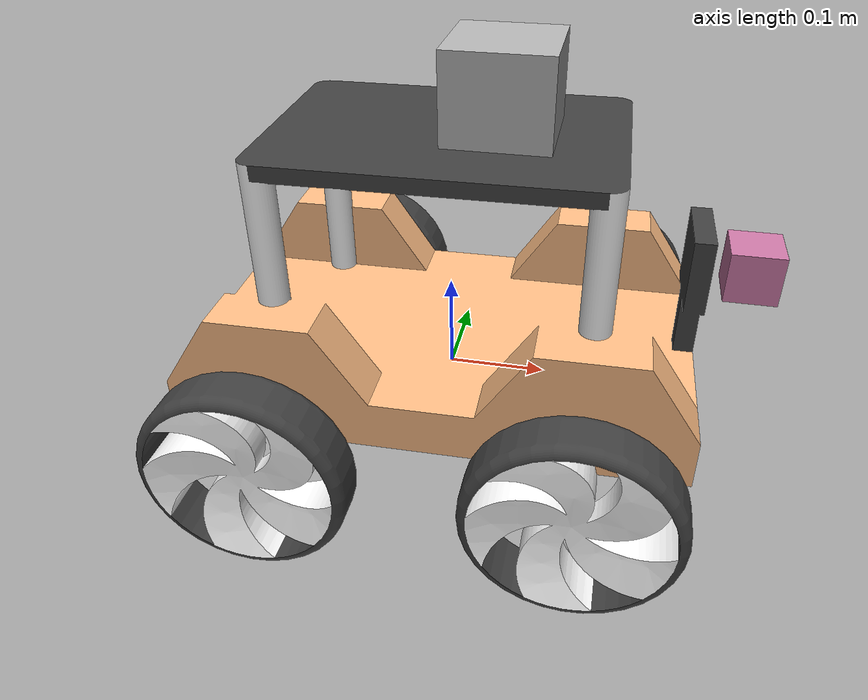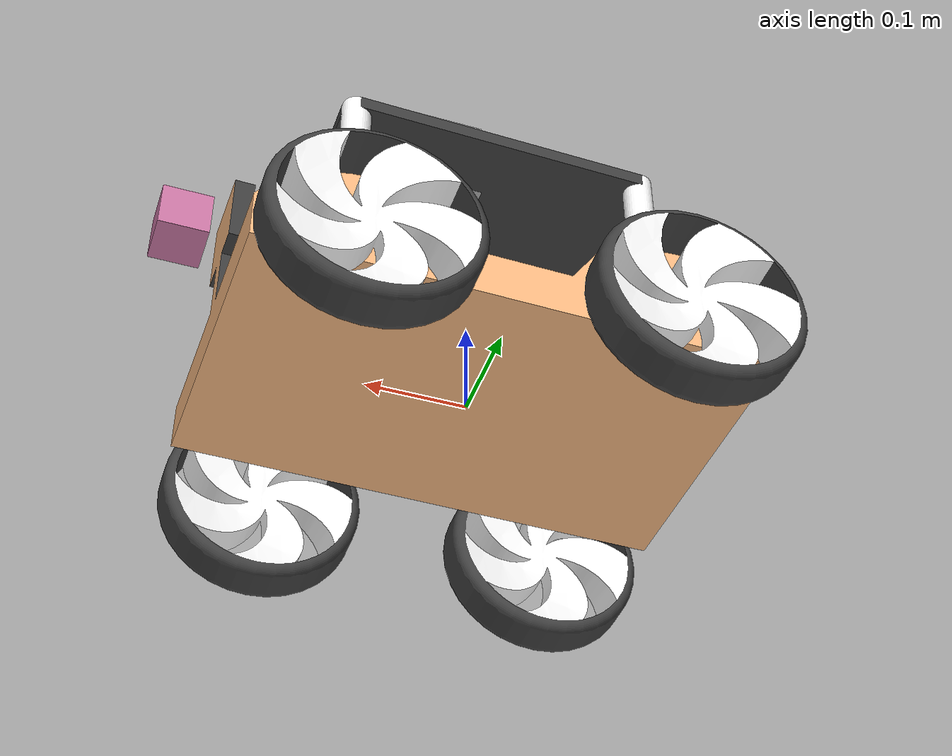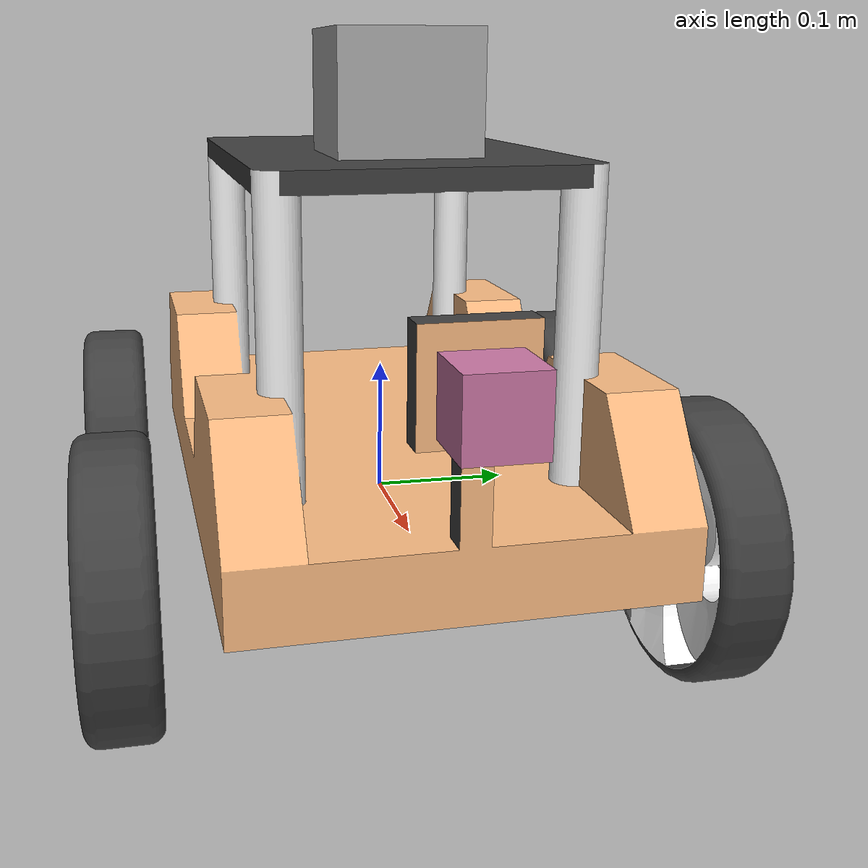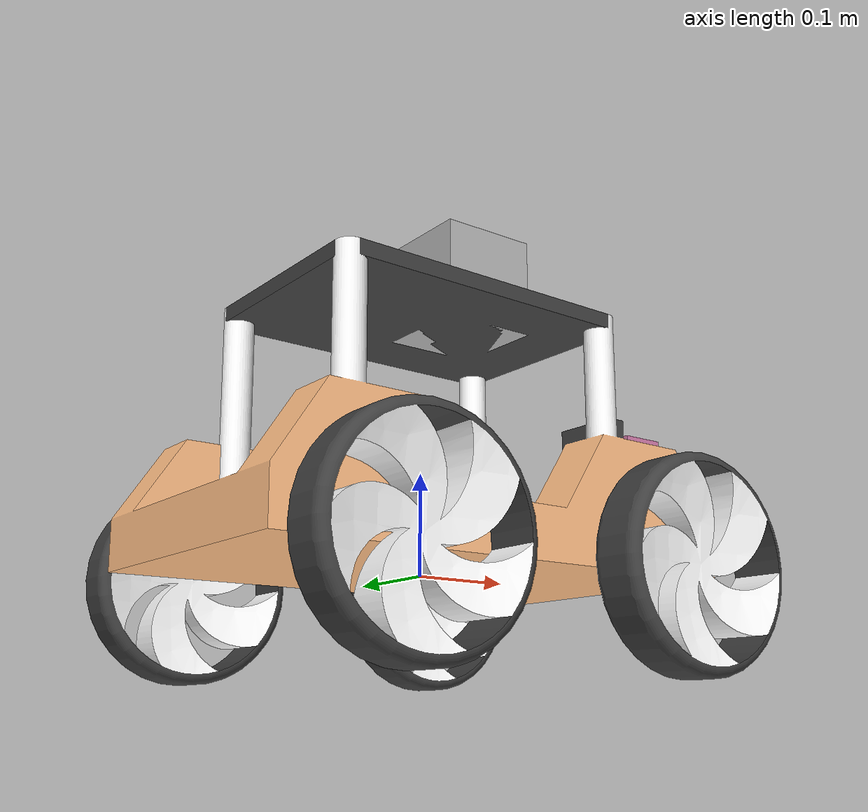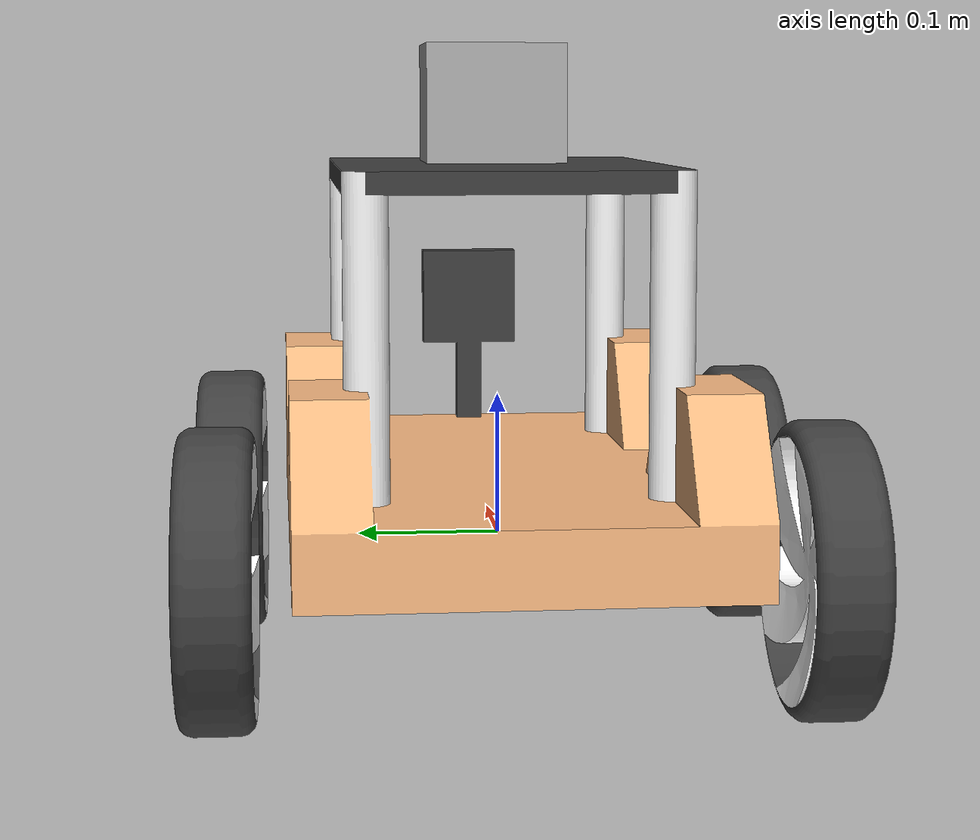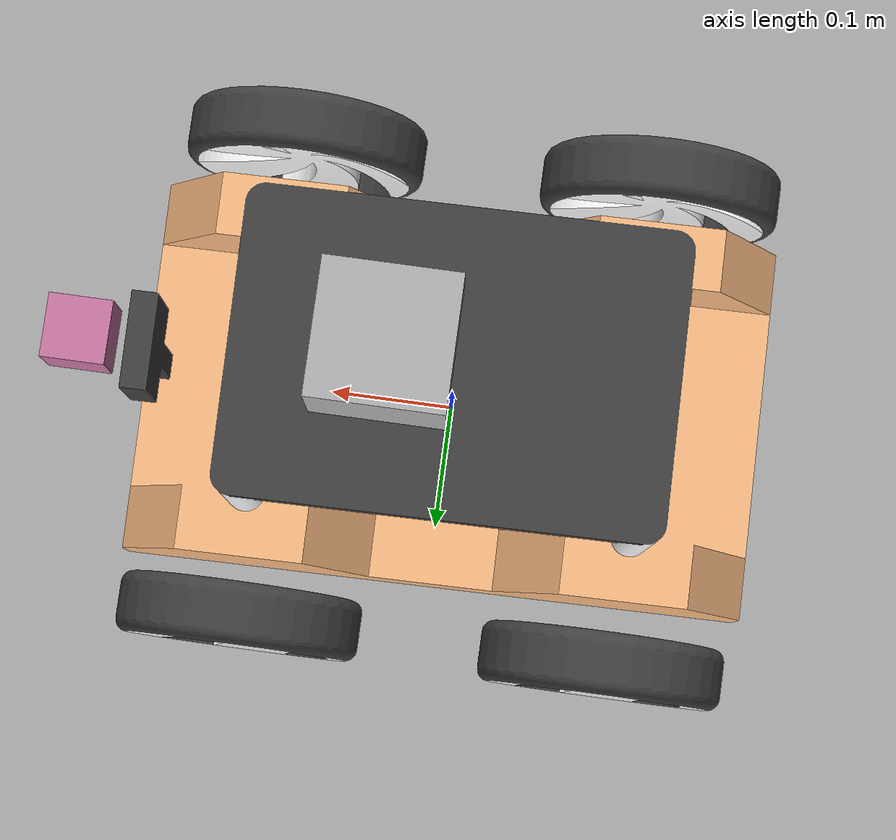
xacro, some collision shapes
<?xml version='1.0'?>

<robot name="robot_rtab_map" xmlns:xacro="http://robot_rtab_map/www.ros.org/wiki/xacro">
  <!--gazebo plugins-->
  <xacro:include filename="$(find robot_rtab_map)/urdf/robot_rtab.gazebo" />

  <link name="base_footprint"></link>

  <!--joints-->
  <joint name="base_footprint_joint" type="fixed">
    <origin xyz="0 0 0" rpy="0 0 0" />
    <parent link="base_footprint"/>
    <child link="chassis" />
  </joint>

  <joint type="continuous" name="left_wheel_hinge">
    <origin xyz="0.15 0.17 0" rpy="0 0 0"/>
    <child link="left_wheel"/>
    <parent link="chassis"/>
    <axis xyz="0 1 0" rpy="0 0 0"/>
    <limit effort="10000" velocity="1000"/>
    <dynamics damping="0.0" friction="0.0"/>
  </joint>

  <joint type="continuous" name="right_wheel_hinge">
    <origin xyz="0.15 -0.23 0" rpy="0 0 0"/>
    <child link="right_wheel"/>
    <parent link="chassis"/>
    <axis xyz="0 1 0" rpy="0 0 0"/>
    <limit effort="10000" velocity="1000"/>
    <dynamics damping="0.0" friction="0.0"/>
  </joint>

  <joint type="continuous" name="left_rear_wheel_hinge">
    <origin xyz="-0.15 0.17 0" rpy="0 0 0"/>
    <child link="left_rear_wheel"/>
    <parent link="chassis"/>
    <axis xyz="0 1 0" rpy="0 0 0"/>
    <limit effort="10000" velocity="1000"/>
    <dynamics damping="0.0" friction="0.0"/>
  </joint>

  <joint type="continuous" name="right_rear_wheel_hinge">
    <origin xyz="-0.15 -0.23 0" rpy="0 0 0"/>
    <child link="right_rear_wheel"/>
    <parent link="chassis"/>
    <axis xyz="0 1 0" rpy="0 0 0"/>
    <limit effort="10000" velocity="1000"/>
    <dynamics damping="0.0" friction="0.0"/>
  </joint>

  <joint type="fixed" name="camera_joint">
    <origin xyz="0.29 0 0.15" rpy="0 0 0"/>
    <child link="camera_link"/>
    <parent link="chassis"/>
    <axis xyz="0 1 0" rpy="0 0 0"/>
  </joint>

  <joint type="fixed" name="camera_optical_joint">
    <origin xyz="0 0 0" rpy="-1.5707 0 -1.5707"/>
    <child link="camera_link_optical"/>
    <parent link="camera_link"/>
  </joint>

  <joint type="fixed" name="hokuyo_joint">
    <origin xyz="0.05 0 0.3" rpy="0 0 0"/>
    <child link="hokuyo"/>
    <parent link="chassis"/>
    <axis xyz="0 1 0" rpy="0 0 0"/>
  </joint>

  <!--chassis-->
  <link name='chassis'>
    <pose>0 0 0.1 0 0 0</pose>

    <inertial>
      <mass value="15.0"/>
      <origin xyz="0.0 0 0" rpy=" 0 0 0"/>
      <inertia
          ixx="0.1" ixy="0" ixz="0"
          iyy="0.1" iyz="0"
          izz="0.1"
      />
    </inertial>

    <collision name='collision'>
      <origin xyz="0 0 0" rpy=" 0 0 0"/>
      <geometry>
        <box size=".5 .3 .1"/>
      </geometry>
    </collision>

    <visual name='chassis_visual'>
      <origin xyz="0 0 0" rpy=" 0 0 0"/>
      <geometry>
        <mesh filename = "package://robot_rtab_map/meshes/chassis.dae"/>
        <!--box size=".4 .2 .1"/-->
      </geometry>
    </visual>

  </link>

  <!--left front wheel-->
  <link name='left_wheel'>
    <inertial>
      <mass value="5.0"/>
      <origin xyz="0.0 0 0" rpy=" 0 1.5708 1.5707"/>
      <inertia
          ixx="0.1" ixy="0" ixz="0"
          iyy="0.1" iyz="0"
          izz="0.1"
      />
    </inertial>

    <collision name='collision'>
      <origin xyz="0.0 0 0" rpy=" 0 1.5708 1.5707"/>
      <geometry>
        <cylinder radius = ".1" length = ".05"/>
      </geometry>
    </collision>

    <visual name='left_wheel_visual'>
      <origin xyz="0.0 0 0" rpy=" 0 1.5708 1.5708"/>
      <geometry>
        <mesh filename = "package://robot_rtab_map/meshes/wheel.dae"/>
        <!--cylinder radius = ".1" length = ".08"/-->
      </geometry>
    </visual>
  </link>

  <!--right front wheel-->
  <link name='right_wheel'>
    <inertial>
      <mass value="5.0"/>
      <origin xyz="0 0 0" rpy=" 0 1.5708 1.5708"/>
      <inertia
          ixx="0.1" ixy="0" ixz="0"
          iyy="0.1" iyz="0"
          izz="0.1"
      />
    </inertial>

    <collision name='collision'>
      <origin xyz="0 0 0" rpy=" 0 1.5708 1.5708"/>
      <geometry>
        <cylinder radius = ".1" length = ".05"/>
      </geometry>
    </collision>

    <visual name='right_wheel_visual'>
      <origin xyz="0 0 0" rpy=" 0 1.5708 1.5708"/>
      <geometry>
        <mesh filename = "package://robot_rtab_map/meshes/wheel.dae"/>
        <!--cylinder radius = ".1" length = ".08"/-->
      </geometry>
    </visual>
  </link>

  <!--left rear wheel-->
  <link name='left_rear_wheel'>
    <inertial>
      <mass value="5.0"/>
      <origin xyz="0.0 0 0" rpy=" 0 1.5708 1.5707"/>
      <inertia
          ixx="0.1" ixy="0" ixz="0"
          iyy="0.1" iyz="0"
          izz="0.1"
      />
    </inertial>

    <collision name='collision'>
      <origin xyz="0.0 0 0" rpy=" 0 1.5708 1.5707"/>
      <geometry>
        <cylinder radius = ".1" length = ".05"/>
      </geometry>
    </collision>

    <visual name='left_rear_wheel_visual'>
      <origin xyz="0.0 0 0" rpy=" 0 1.5708 1.5708"/>
      <geometry>
        <mesh filename = "package://robot_rtab_map/meshes/wheel.dae"/>
        <!--cylinder radius = ".1" length = ".08"/-->
      </geometry>
    </visual>
  </link>

  <!--right rear wheel-->
  <link name='right_rear_wheel'>
    <inertial>
      <mass value="5.0"/>
      <origin xyz="0 0 0" rpy=" 0 1.5708 1.5708"/>
      <inertia
          ixx="0.1" ixy="0" ixz="0"
          iyy="0.1" iyz="0"
          izz="0.1"
      />
    </inertial>

    <collision name='collision'>
      <origin xyz="0 0 0" rpy=" 0 1.5708 1.5708"/>
      <geometry>
        <cylinder radius = ".1" length = ".05"/>
      </geometry>
    </collision>

    <visual name='right_rear_wheel_visual'>
      <origin xyz="0 0 0" rpy=" 0 1.5708 1.5708"/>
      <geometry>
        <mesh filename = "package://robot_rtab_map/meshes/wheel.dae"/>
        <!--cylinder radius = ".1" length = ".08"/-->
      </geometry>
    </visual>
  </link>

  <!--camera-->
  <link name='camera_link'>
    <pose>0 0 0 0 0 0</pose>
    <inertial>
      <mass value="0.1"/>
      <origin xyz="0 0 0" rpy=" 0 0 0"/>
      <inertia
          ixx="1e-6" ixy="0" ixz="0"
          iyy="1e-6" iyz="0"
          izz="1e-6"
      />
    </inertial>

    <collision name='collision'>
      <origin xyz="0 0 0" rpy=" 0 0 0"/>
      <geometry>
        <box size=".05 .05 .05"/>
      </geometry>
    </collision>

    <visual name='camera_link_visual'>
      <origin xyz="0 0 0" rpy=" 0 0 0"/>
      <geometry>
        <box size=".05 .05 .05"/>
      </geometry>
    </visual>

  </link>

  <!--hokuyo lidar-->
  <link name='hokuyo'>
    <inertial>
      <mass value="1e-5"/>
      <origin xyz="0 0 0" rpy=" 0 0 0"/>
      <inertia
          ixx="1e-6" ixy="0" ixz="0"
          iyy="1e-6" iyz="0"
          izz="1e-6"
      />
    </inertial>

    <collision name='collision'>
      <origin xyz="0 0 0" rpy=" 0 0 0"/>
      <geometry>
        <box size=".1 .1 .1"/>
      </geometry>
    </collision>

    <visual name='visual'>
      <origin xyz="0 0 0" rpy=" 0 0 0"/>
      <geometry>
        <mesh filename = "package://robot_rtab_map/meshes/hokuyo.dae"/>
      </geometry>
    </visual>

  </link>

  <link name="camera_link_optical">
  </link>

  <!--camera-->
  <gazebo reference="camera">
    <material>Gazebo/Red</material>
  </gazebo>

</robot>
